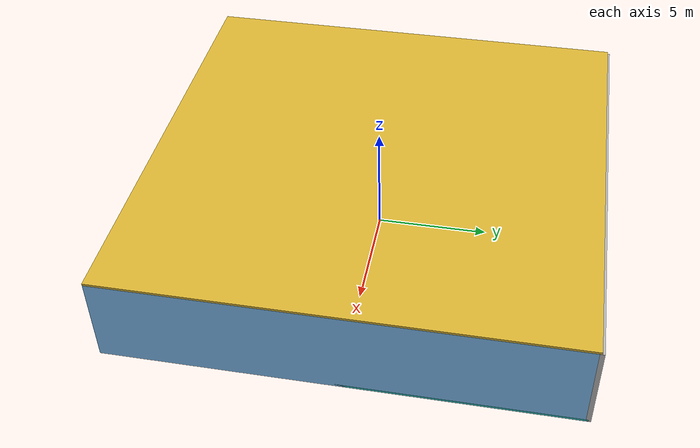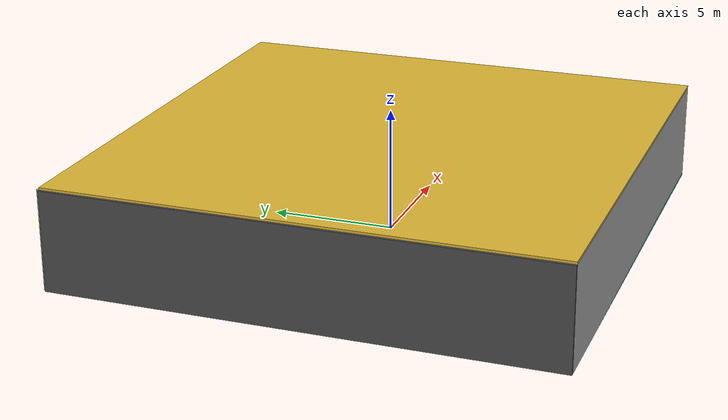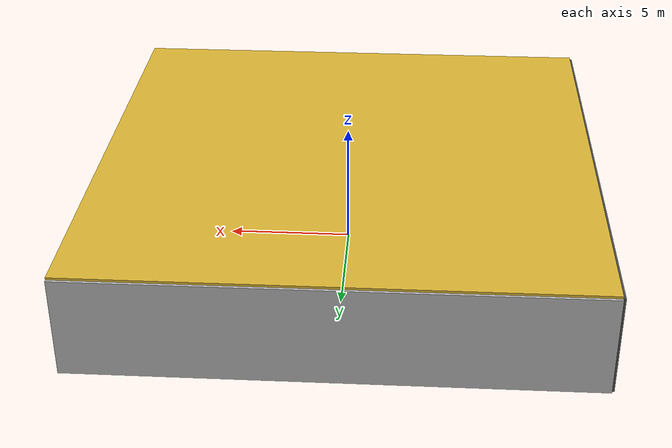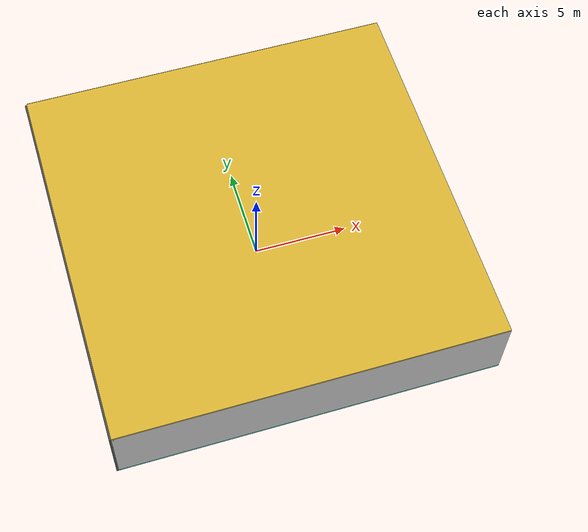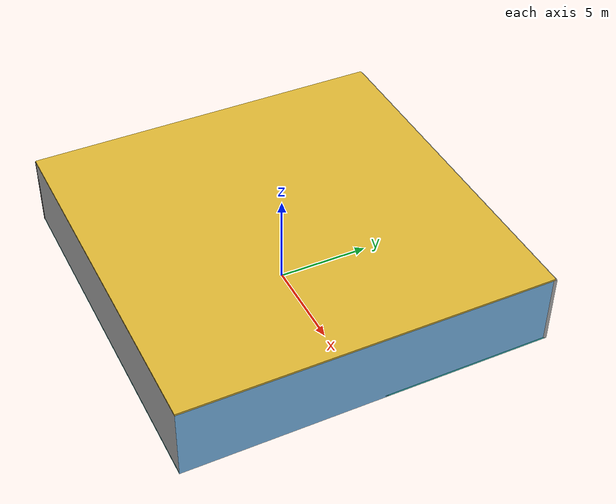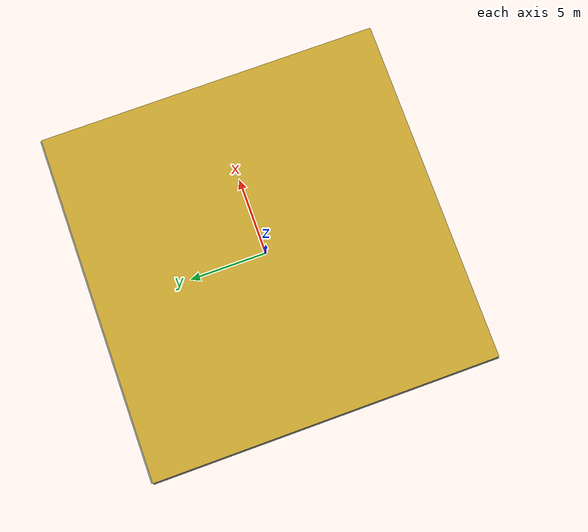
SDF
<sdf version="1.4">
 <world name="default">
  <physics type="ode">
   <max_step_size>0.001</max_step_size>
   <real_time_factor>1</real_time_factor>
   <real_time_update_rate>1000</real_time_update_rate>
   <gravity>0 0 -9.8</gravity>
  </physics>
  <scene><ambient>0.4 0.4 0.4 1</ambient><background>0.7 0.7 0.7 1</background><shadows>1</shadows></scene>
  <model name="Surrounding">
   <static>1</static>
   <link name="Ceiling">
    <collision name="Ceiling_Collision"><geometry><box><size>20 20 0.1</size></box></geometry></collision>
    <visual name="Ceiling_Visual">
     <geometry><box><size>20 20 0.1</size></box></geometry>
     <material>
      <script><uri>file://media/materials/scripts/gazebo.material</uri><name>Gazebo/Gold</name></script>
     </material>
    </visual>
    <pose>0 0 4.05 0 0 0</pose>
   </link>
   <link name="Wall_South">
    <collision name="Wall_South_Collision">
     <geometry><box><size>20 0 4</size></box></geometry>
     <pose>0 0 2 0 -0 0</pose>
    </collision>
    <visual name="Wall_South_Visual">
     <pose>0 0 2 0 -0 0</pose>
     <geometry><box><size>20 0 4</size></box></geometry>
     <material>
      <script><uri>file://media/materials/scripts/gazebo.material</uri><name>Gazebo/PioneerBody</name></script>
     </material>
    </visual>
    <velocity_decay><linear>0</linear><angular>0</angular></velocity_decay>
    <pose>0 -10 0 0 -0 0</pose>
   </link>
   <link name="Wall_East">
    <collision name="Wall_21_Collision">
     <geometry><box><size>20 0 4</size></box></geometry>
     <pose>0 0 2 0 -0 0</pose>
    </collision>
    <visual name="Wall_21_Visual">
     <pose>0 0 2 0 -0 0</pose>
     <geometry><box><size>20 0 4</size></box></geometry>
     <material>
      <script><uri>file://media/materials/scripts/gazebo.material</uri><name>Gazebo/SkyBlue</name></script>
     </material>
    </visual>
    <velocity_decay><linear>0</linear><angular>0</angular></velocity_decay>
    <pose>10 0 0 0 -0 1.5708</pose>
   </link>
   <link name="Wall_North">
    <collision name="Wall_22_Collision">
     <geometry><box><size>20 0.2 4</size></box></geometry>
     <pose>0 0 2 0 -0 0</pose>
    </collision>
    <visual name="Wall_22_Visual">
     <pose>0 0 2 0 -0 0</pose>
     <geometry><box><size>20 0.2 4</size></box></geometry>
     <material>
      <script><uri>file://media/materials/scripts/gazebo.material</uri><name>Gazebo/LightOn</name></script>
     </material>
    </visual>
    <velocity_decay><linear>0</linear><angular>0</angular></velocity_decay>
    <pose>0 10 0 0 -0 0</pose>
   </link>
   <link name="Wall_West">
    <collision name="Wall_23_Collision">
     <geometry><box><size>20 0.2 4</size></box></geometry>
     <pose>0 0 2 0 -0 0</pose>
    </collision>
    <visual name="Wall_23_Visual">
     <pose>0 0 2 0 -0 0</pose>
     <geometry><box><size>20 0.2 4</size></box></geometry>
     <material>
      <script><uri>file://media/materials/scripts/gazebo.material</uri><name>Gazebo/Road</name></script>
     </material>
    </visual>
    <velocity_decay><linear>0</linear><angular>0</angular></velocity_decay>
    <pose>-10 0 0 0 0 -1.5708</pose>
   </link>
   <link name="Ground_link">
    <collision name="collision">
     <pose>0 0 .05 0 -0 0</pose>
     <geometry><box><size>20 20 0.1</size></box></geometry>
    </collision>
    <visual name="visual">
     <pose>0 0 .05 0 -0 0</pose>
     <geometry><box><size>20 20 0.1</size></box></geometry>
     <material>
      <script><uri>file://media/materials/scripts/gazebo.material</uri><name>Gazebo/TurquoiseGlow</name></script>
     </material>
    </visual>
   </link>
   <static>1</static>
  </model>
  <spherical_coordinates>
   <surface_model>EARTH_WGS84</surface_model>
   <latitude_deg>0</latitude_deg>
   <longitude_deg>0</longitude_deg>
   <elevation>0</elevation>
   <heading_deg>0</heading_deg>
  </spherical_coordinates>
  <light name="lightball_0" type="diffuse">
   <diffuse>0.8 0.8 0.8 1</diffuse>
   <specular>0.2 0.2 0.2 1</specular>
   <attenuation>
    <range>100</range>
    <constant>0.7</constant>
    <linear>0.01</linear>
    <quadratic>0.001</quadratic>
   </attenuation>
   <direction>-0.5 0.1 -0.9</direction>
   <pose>-6.42058155522 9.58761531035 2.44152400105 0 0 0</pose>
  </light>
  <light name="lightball_1" type="diffuse">
   <diffuse>0.8 0.8 0.8 1</diffuse>
   <specular>0.2 0.2 0.2 1</specular>
   <attenuation>
    <range>100</range>
    <constant>0.7</constant>
    <linear>0.01</linear>
    <quadratic>0.001</quadratic>
   </attenuation>
   <direction>-0.5 0.1 -0.9</direction>
   <pose>4.3415338859 -3.76821008695 3.38419613191 0 0 0</pose>
  </light>
  <light name="lightball_2" type="diffuse">
   <diffuse>0.8 0.8 0.8 1</diffuse>
   <specular>0.2 0.2 0.2 1</specular>
   <attenuation>
    <range>100</range>
    <constant>0.7</constant>
    <linear>0.01</linear>
    <quadratic>0.001</quadratic>
   </attenuation>
   <direction>-0.5 0.1 -0.9</direction>
   <pose>-6.75649119212 1.27445340117 3.20631170544 0 0 0</pose>
  </light>
  <light name="lightball_3" type="diffuse">
   <diffuse>0.8 0.8 0.8 1</diffuse>
   <specular>0.2 0.2 0.2 1</specular>
   <attenuation>
    <range>100</range>
    <constant>0.7</constant>
    <linear>0.01</linear>
    <quadratic>0.001</quadratic>
   </attenuation>
   <direction>-0.5 0.1 -0.9</direction>
   <pose>-9.08137735236 -0.949149980616 3.16725021889 0 0 0</pose>
  </light>
  <light name="lightball_4" type="diffuse">
   <diffuse>0.8 0.8 0.8 1</diffuse>
   <specular>0.2 0.2 0.2 1</specular>
   <attenuation>
    <range>100</range>
    <constant>0.7</constant>
    <linear>0.01</linear>
    <quadratic>0.001</quadratic>
   </attenuation>
   <direction>-0.5 0.1 -0.9</direction>
   <pose>-7.3225241944 2.2212904642 1.9667410592 0 0 0</pose>
  </light>
  <light name="lightball_5" type="diffuse">
   <diffuse>0.8 0.8 0.8 1</diffuse>
   <specular>0.2 0.2 0.2 1</specular>
   <attenuation>
    <range>100</range>
    <constant>0.7</constant>
    <linear>0.01</linear>
    <quadratic>0.001</quadratic>
   </attenuation>
   <direction>-0.5 0.1 -0.9</direction>
   <pose>4.96342312295 3.62349384648 0.565728515565 0 0 0</pose>
  </light>
  <light name="lightball_6" type="diffuse">
   <diffuse>0.8 0.8 0.8 1</diffuse>
   <specular>0.2 0.2 0.2 1</specular>
   <attenuation>
    <range>100</range>
    <constant>0.7</constant>
    <linear>0.01</linear>
    <quadratic>0.001</quadratic>
   </attenuation>
   <direction>-0.5 0.1 -0.9</direction>
   <pose>5.92524127531 -6.06995127126 3.28461634386 0 0 0</pose>
  </light>
  <light name="lightball_7" type="diffuse">
   <diffuse>0.8 0.8 0.8 1</diffuse>
   <specular>0.2 0.2 0.2 1</specular>
   <attenuation>
    <range>100</range>
    <constant>0.7</constant>
    <linear>0.01</linear>
    <quadratic>0.001</quadratic>
   </attenuation>
   <direction>-0.5 0.1 -0.9</direction>
   <pose>-7.35966207426 -1.45814725708 1.85943138122 0 0 0</pose>
  </light>
  <light name="lightball_8" type="diffuse">
   <diffuse>0.8 0.8 0.8 1</diffuse>
   <specular>0.2 0.2 0.2 1</specular>
   <attenuation>
    <range>100</range>
    <constant>0.7</constant>
    <linear>0.01</linear>
    <quadratic>0.001</quadratic>
   </attenuation>
   <direction>-0.5 0.1 -0.9</direction>
   <pose>-8.40965545542 4.12103691992 3.63340755511 0 0 0</pose>
  </light>
  <light name="lightball_9" type="diffuse">
   <diffuse>0.8 0.8 0.8 1</diffuse>
   <specular>0.2 0.2 0.2 1</specular>
   <attenuation>
    <range>100</range>
    <constant>0.7</constant>
    <linear>0.01</linear>
    <quadratic>0.001</quadratic>
   </attenuation>
   <direction>-0.5 0.1 -0.9</direction>
   <pose>-2.59889722375 -5.13979102404 1.08741852443 0 0 0</pose>
  </light>
  <light name="lightball_10" type="diffuse">
   <diffuse>0.8 0.8 0.8 1</diffuse>
   <specular>0.2 0.2 0.2 1</specular>
   <attenuation>
    <range>100</range>
    <constant>0.7</constant>
    <linear>0.01</linear>
    <quadratic>0.001</quadratic>
   </attenuation>
   <direction>-0.5 0.1 -0.9</direction>
   <pose>-4.53310553967 9.03155311559 1.52901993619 0 0 0</pose>
  </light>
  <light name="lightball_11" type="diffuse">
   <diffuse>0.8 0.8 0.8 1</diffuse>
   <specular>0.2 0.2 0.2 1</specular>
   <attenuation>
    <range>100</range>
    <constant>0.7</constant>
    <linear>0.01</linear>
    <quadratic>0.001</quadratic>
   </attenuation>
   <direction>-0.5 0.1 -0.9</direction>
   <pose>3.30405407801 6.56840860482 3.48875404358 0 0 0</pose>
  </light>
  <light name="lightball_12" type="diffuse">
   <diffuse>0.8 0.8 0.8 1</diffuse>
   <specular>0.2 0.2 0.2 1</specular>
   <attenuation>
    <range>100</range>
    <constant>0.7</constant>
    <linear>0.01</linear>
    <quadratic>0.001</quadratic>
   </attenuation>
   <direction>-0.5 0.1 -0.9</direction>
   <pose>2.71129533845 -9.53469661548 1.73808618683 0 0 0</pose>
  </light>
  <light name="lightball_13" type="diffuse">
   <diffuse>0.8 0.8 0.8 1</diffuse>
   <specular>0.2 0.2 0.2 1</specular>
   <attenuation>
    <range>100</range>
    <constant>0.7</constant>
    <linear>0.01</linear>
    <quadratic>0.001</quadratic>
   </attenuation>
   <direction>-0.5 0.1 -0.9</direction>
   <pose>9.59385267769 -9.57235466903 2.96550702249 0 0 0</pose>
  </light>
  <include><uri>model://cabinet</uri><pose>-7.76612633064 4.44718495264 0 0 0 1.66838630968</pose></include>
  <include>
   <uri>model://robocup_3Dsim_goal</uri>
   <pose>-8.28345083633 6.94102600102 0 0 0 2.13456200657</pose>
  </include>
  <include>
   <uri>model://textured_shapes</uri>
   <pose>-4.40764249468 -3.96044018466 0 0 0 2.60696728148</pose>
  </include>
  <include>
   <uri>model://construction_cone</uri>
   <pose>0.842944902073 -7.1166201305 0 0 0 1.87738504317</pose>
  </include>
  <include><uri>model://table</uri><pose>0.96723798974 4.73814174196 0 0 0 0.0831321266356</pose></include>
 </world>
</sdf>

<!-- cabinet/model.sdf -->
<sdf version="1.5">
  <model name="cabinet">
    <static>true</static>
    <link name="cabinet_bottom_plate">
      <inertial>
        <pose>0 0 -1 0 0 0</pose>
        <inertia>
          <ixx>2.050000</ixx>
          <ixy>0</ixy>
          <ixz>0</ixz>
          <iyy>2.050000</iyy>
          <iyz>0</iyz>
          <izz>2.050000</izz>
        </inertia>
        <mass>25.000000</mass>
      </inertial>
      <collision name="cabinet_bottom_plate_geom">
        <pose>0 0 0.010000 0 0 0</pose>
        <geometry>
          <box>
            <size>0.450000 0.450000 0.020000</size>
          </box>
        </geometry>
      </collision>
      <visual name="cabinet_bottom_plate_geom_visual">
        <pose>0 0 0.010000 0 0 0</pose>
        <geometry>
          <box>
            <size>0.450000 0.450000 0.020000</size>
          </box>
        </geometry>
        <material>
          <script>
            <uri>model://media/materials/scripts/gazebo.material</uri>
            <name>Gazebo/Wood</name>
          </script>
        </material>
      </visual>
      <collision name="cabinet_bottom_plate_geom_cabinet_back_plate">
        <pose>0.235000 0 0.510000 0 0 0</pose>
        <geometry>
          <box>
            <size>0.020000 0.450000 1.020000</size>
          </box>
        </geometry>
      </collision>
      <visual name="cabinet_bottom_plate_geom_cabinet_back_plate_visual">
        <pose>0.235000 0 0.510000 0 0 0</pose>
        <geometry>
          <box>
            <size>0.020000 0.450000 1.020000</size>
          </box>
        </geometry>
        <material>
          <script>
            <uri>model://media/materials/scripts/gazebo.material</uri>
            <name>Gazebo/Wood</name>
          </script>
        </material>
      </visual>
      <collision name="cabinet_bottom_plate_geom_cabinet_left_plate">
        <pose>0 0.235000 0.510000 0 0 0</pose>
        <geometry>
          <box>
            <size>0.450000 0.020000 1.020000</size>
          </box>
        </geometry>
      </collision>
      <visual name="cabinet_bottom_plate_geom_cabinet_left_plate_visual">
        <pose>0 0.235000 0.510000 0 0 0</pose>
        <geometry>
          <box>
            <size>0.450000 0.020000 1.020000</size>
          </box>
        </geometry>
        <material>
          <script>
            <uri>model://media/materials/scripts/gazebo.material</uri>
            <name>Gazebo/Wood</name>
          </script>
        </material>
      </visual>
      <collision name="cabinet_bottom_plate_geom_cabinet_middle_plate">
        <pose>0 0 0.510000 0 0 0</pose>
        <geometry>
          <box>
            <size>0.450000 0.450000 0.020000</size>
          </box>
        </geometry>
      </collision>
      <visual name="cabinet_bottom_plate_geom_cabinet_middle_plate_visual">
        <pose>0 0 0.510000 0 0 0</pose>
        <geometry>
          <box>
            <size>0.450000 0.450000 0.020000</size>
          </box>
        </geometry>
        <material>
          <script>
            <uri>model://media/materials/scripts/gazebo.material</uri>
            <name>Gazebo/Wood</name>
          </script>
        </material>
      </visual>
      <collision name="cabinet_bottom_plate_geom_cabinet_right_plate">
        <pose>0 -0.235000 0.510000 0 0 0</pose>
        <geometry>
          <box>
            <size>0.450000 0.020000 1.020000</size>
          </box>
        </geometry>
      </collision>
      <visual name="cabinet_bottom_plate_geom_cabinet_right_plate_visual">
        <pose>0 -0.235000 0.510000 0 0 0</pose>
        <geometry>
          <box>
            <size>0.450000 0.020000 1.020000</size>
          </box>
        </geometry>
        <material>
          <script>
            <uri>model://media/materials/scripts/gazebo.material</uri>
            <name>Gazebo/Wood</name>
          </script>
        </material>
      </visual>
      <collision name="cabinet_bottom_plate_geom_cabinet_top_plate">
        <pose>0 0 1.010000 0 0 0</pose>
        <geometry>
          <box>
            <size>0.450000 0.450000 0.020000</size>
          </box>
        </geometry>
      </collision>
      <visual name="cabinet_bottom_plate_geom_cabinet_top_plate_visual">
        <pose>0 0 1.010000 0 0 0</pose>
        <geometry>
          <box>
            <size>0.450000 0.450000 0.020000</size>
          </box>
        </geometry>
        <material>
          <script>
            <uri>model://media/materials/scripts/gazebo.material</uri>
            <name>Gazebo/Wood</name>
          </script>
        </material>
      </visual>
    </link>
  </model>
</sdf>

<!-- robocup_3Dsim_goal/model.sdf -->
<sdf version="1.5">
  <model name="robocup_3d_goal">
    <static>true</static>
    <link name="left_post">
      <pose>0 1.05 0.45 0 0 0</pose>
      <collision name="collision">
        <geometry>
          <cylinder>
            <radius>0.05</radius>
            <length>0.9</length>
          </cylinder>
        </geometry>
      </collision>
      <visual name="visual">
        <geometry>
          <cylinder>
            <radius>0.05</radius>
            <length>0.9</length>
          </cylinder>
        </geometry>
        <material>
          <script>
            <uri>file://media/materials/scripts/gazebo.material</uri>
            <name>Gazebo/ZincYellow</name>
          </script>
        </material>
      </visual>
    </link>
    <link name="left_support_horiz_lower">
      <pose>0.30 1.05 0.01 0 0 0</pose>
      <collision name="collision">
        <geometry>
          <box>
            <size>0.50 0.02 0.02</size>
          </box>
        </geometry>
      </collision>
      <visual name="visual">
        <geometry>
          <box>
            <size>0.50 0.02 0.02</size>
          </box>
        </geometry>
        <material>
          <script>
            <uri>file://media/materials/scripts/gazebo.material</uri>
            <name>Gazebo/White</name>
          </script>
        </material>
      </visual>
    </link>
    <link name="left_support_horiz_upper">
      <pose>0.30 1.05 0.79 0 0 0</pose>
      <collision name="collision">
        <geometry>
          <box>
            <size>0.50 0.02 0.02</size>
          </box>
        </geometry>
      </collision>
      <visual name="visual">
        <geometry>
          <box>
            <size>0.50 0.02 0.02</size>
          </box>
        </geometry>
        <material>
          <script>
            <uri>file://media/materials/scripts/gazebo.material</uri>
            <name>Gazebo/White</name>
          </script>
        </material>
      </visual>
    </link>
    <link name="left_support_vertical">
      <pose>0.56 1.05 0.4 0 1.5708 0</pose>
      <collision name="collision">
        <geometry>
          <box>
            <size>0.80 0.02 0.02</size>
          </box>
        </geometry>
      </collision>
      <visual name="visual">
        <geometry>
          <box>
            <size>0.80 0.02 0.02</size>
          </box>
        </geometry>
        <material>
          <script>
            <uri>file://media/materials/scripts/gazebo.material</uri>
            <name>Gazebo/White</name>
          </script>
        </material>
      </visual>
    </link>
    <link name="right_support_horiz_lower">
      <pose>0.30 -1.05 0.01 0 0 0</pose>
      <collision name="collision">
        <geometry>
          <box>
            <size>0.50 0.02 0.02</size>
          </box>
        </geometry>
      </collision>
      <visual name="visual">
        <geometry>
          <box>
            <size>0.50 0.02 0.02</size>
          </box>
        </geometry>
        <material>
          <script>
            <uri>file://media/materials/scripts/gazebo.material</uri>
            <name>Gazebo/White</name>
          </script>
        </material>
      </visual>
    </link>
    <link name="right_support_horiz_upper">
      <pose>0.30 -1.05 0.79 0 0 0</pose>
      <collision name="collision">
        <geometry>
          <box>
            <size>0.50 0.02 0.02</size>
          </box>
        </geometry>
      </collision>
      <visual name="visual">
        <geometry>
          <box>
            <size>0.50 0.02 0.02</size>
          </box>
        </geometry>
        <material>
          <script>
            <uri>file://media/materials/scripts/gazebo.material</uri>
            <name>Gazebo/White</name>
          </script>
        </material>
      </visual>
    </link>
    <link name="right_support_vertical">
      <pose>0.56 -1.05 0.4 0 1.5708 0</pose>
      <collision name="collision">
        <geometry>
          <box>
            <size>0.80 0.02 0.02</size>
          </box>
        </geometry>
      </collision>
      <visual name="visual">
        <geometry>
          <box>
            <size>0.80 0.02 0.02</size>
          </box>
        </geometry>
        <material>
          <script>
            <uri>file://media/materials/scripts/gazebo.material</uri>
            <name>Gazebo/White</name>
          </script>
        </material>
      </visual>
    </link>
    <link name="center_support_horiz_lower">
      <pose>0.56 0 0.01 0 1.5708 0</pose>
      <collision name="collision">
        <geometry>
          <box>
            <size>0.02 2.08 0.02</size>
          </box>
        </geometry>
      </collision>
      <visual name="visual">
        <geometry>
          <box>
            <size>0.02 2.08 0.02</size>
          </box>
        </geometry>
        <material>
          <script>
            <uri>file://media/materials/scripts/gazebo.material</uri>
            <name>Gazebo/White</name>
          </script>
        </material>
      </visual>
    </link>
    <link name="center_support_horiz_upper">
      <pose>0.56 0 0.79 0 1.5708 0</pose>
      <collision name="collision">
        <geometry>
          <box>
            <size>0.02 2.08 0.02</size>
          </box>
        </geometry>
      </collision>
      <visual name="visual">
        <geometry>
          <box>
            <size>0.02 2.08 0.02</size>
          </box>
        </geometry>
        <material>
          <script>
            <uri>file://media/materials/scripts/gazebo.material</uri>
            <name>Gazebo/White</name>
          </script>
        </material>
      </visual>
    </link>
    <link name="right_post">
      <pose>0 -1.05 0.45 0 0 0</pose>
      <collision name="collision">
        <geometry>
          <cylinder>
            <radius>0.05</radius>
            <length>0.9</length>
          </cylinder>
        </geometry>
      </collision>
      <visual name="visual">
        <geometry>
          <cylinder>
            <radius>0.05</radius>
            <length>0.9</length>
          </cylinder>
        </geometry>
        <material>
          <script>
            <uri>file://media/materials/scripts/gazebo.material</uri>
            <name>Gazebo/ZincYellow</name>
          </script>
        </material>
      </visual>
    </link>
    <link name="crossbar">
      <pose>0 0 0.85 1.57 1.57 0</pose>
      <collision name="collision">
        <geometry>
          <cylinder>
            <radius>0.05</radius>
            <length>2.0</length>
          </cylinder>
        </geometry>
      </collision>
      <visual name="visual">
        <geometry>
          <cylinder>
            <radius>0.05</radius>
            <length>2.0</length>
          </cylinder>
        </geometry>
        <material>
          <script>
            <uri>file://media/materials/scripts/gazebo.material</uri>
            <name>Gazebo/ZincYellow</name>
          </script>
        </material>
      </visual>
    </link>
    <link name="center_net">
      <pose>0.56 0 0.40 0 0 0</pose>
      <collision name="collision">
        <geometry>
          <box>
            <size>0.01 2.1 0.80</size>
          </box>
        </geometry>
      </collision>
      <visual name="visual">
        <geometry>
          <box>
            <size>0.01 2.1 0.80</size>
          </box>
        </geometry>
        <material>
          <script>
            <uri>model://../model_source/models/robocup09_spl_field/materials/scripts/</uri>
            <uri>model://../model_source/models/robocup09_spl_field/materials/textures/</uri>
            <name>RoboCup/Net</name>
          </script>
        </material>
      </visual>
    </link>
    <link name="left_net">
      <pose>0.30 1.05 0.40 0 0 0</pose>
      <collision name="collision">
        <geometry>
          <box>
            <size>0.50 0.01 0.76</size>
          </box>
        </geometry>
      </collision>
      <visual name="visual">
        <geometry>
          <box>
            <size>0.50 0.01 0.76</size>
          </box>
        </geometry>
        <material>
          <script>
            <uri>model://../model_source/models/robocup09_spl_field/materials/scripts/</uri>
            <uri>model://../model_source/models/robocup09_spl_field/materials/textures/</uri>
            <name>RoboCup/Net</name>
          </script>
        </material>
      </visual>
    </link>
    <link name="right_net">
      <pose>0.30 -1.05 0.40 0 0 0</pose>
      <collision name="collision">
        <geometry>
          <box>
            <size>0.50 0.01 0.76</size>
          </box>
        </geometry>
      </collision>
      <visual name="visual">
        <geometry>
          <box>
            <size>0.50 0.01 0.76</size>
          </box>
        </geometry>
        <material>
          <script>
            <uri>model://../model_source/models/robocup09_spl_field/materials/scripts/</uri>
            <uri>model://../model_source/models/robocup09_spl_field/materials/textures/</uri>
            <name>RoboCup/Net</name>
          </script>
        </material>
      </visual>
    </link>
  </model>
</sdf>

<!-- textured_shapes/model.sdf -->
<sdf version="1.6">
  <model name="textured_shapes">
    <pose>0 0 0.5 0 0 0</pose>
    <link name="box">
      <pose>0 -1.5 0 0 0 0</pose>
      <collision name="collision">
        <geometry>
          <box>
            <size>1 1 1</size>
          </box>
        </geometry>
      </collision>
      <visual name="visual">
        <geometry>
          <box>
            <size>1 1 1</size>
          </box>
        </geometry>
        <material>
          <script>
            <uri>model://../model_source/models/textured_shapes/materials/scripts</uri>
            <uri>model://../model_source/models/textured_shapes/materials/textures</uri>
            <name>TexturedShape/Squares</name>
          </script>
        </material>
      </visual>
    </link>
    <link name="sphere">
      <collision name="collision">
        <geometry>
          <sphere>
            <radius>0.5</radius>
          </sphere>
        </geometry>
      </collision>
      <visual name="visual">
        <geometry>
          <sphere>
            <radius>0.5</radius>
          </sphere>
        </geometry>
        <material>
          <script>
            <uri>model://../model_source/models/textured_shapes/materials/scripts</uri>
            <uri>model://../model_source/models/textured_shapes/materials/textures</uri>
            <name>TexturedShape/Squares</name>
          </script>
        </material>
      </visual>
    </link>
    <link name="cylinder">
      <pose>0 1.5 0 0 0 0</pose>
      <collision name="collision">
        <geometry>
          <cylinder>
            <radius>0.5</radius>
            <length>1</length>
          </cylinder>
        </geometry>
      </collision>
      <visual name="visual">
        <geometry>
          <cylinder>
            <radius>0.5</radius>
            <length>1</length>
          </cylinder>
        </geometry>
        <material>
          <script>
            <uri>model://../model_source/models/textured_shapes/materials/scripts</uri>
            <uri>model://../model_source/models/textured_shapes/materials/textures</uri>
            <name>TexturedShape/Squares</name>
          </script>
        </material>
      </visual>
    </link>
  </model>
</sdf>

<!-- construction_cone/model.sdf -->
<sdf version="1.5">
  <model name="Construction Cone">
    <link name="link">
      <collision name="collision">
        <geometry>
          <mesh>
            <scale>10 10 10</scale>
            <uri>file://isr-testbed/construction_cone/meshes/construction_cone.dae</uri>
          </mesh>
        </geometry>
      </collision>
      <visual name="visual">
        <geometry>
          <mesh>
            <scale>10 10 10</scale>
            <uri>file://isr-testbed/construction_cone/meshes/construction_cone.dae</uri>
          </mesh>
        </geometry>
      </visual>
    </link>
  </model>
</sdf>

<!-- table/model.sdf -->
<sdf version="1.5">
  <model name="table">
    <static>true</static>
    <link name="link">
      <collision name="surface">
        <pose>0 0 1.0 0 0 0</pose>
        <geometry>
          <box>
            <size>1.5 0.8 0.03</size>
          </box>
        </geometry>
        <surface>
          <friction>
            <ode>
              <mu>0.6</mu>
              <mu2>0.6</mu2>
            </ode>
          </friction>
        </surface>
      </collision>
      <visual name="visual1">
        <pose>0 0 1.0 0 0 0</pose>
        <geometry>
          <box>
            <size>1.5 0.8 0.03</size>
          </box>
        </geometry>
        <material>
          <script>
            <uri>model://media/materials/scripts/gazebo.material</uri>
            <name>Gazebo/Wood</name>
          </script>
        </material>
      </visual>
      <collision name="front_left_leg">
        <pose>0.68 0.38 0.5 0 0 0</pose>
        <geometry>
          <cylinder>
            <radius>0.02</radius>
            <length>1.0</length>
          </cylinder>
        </geometry>
      </collision>
      <visual name="front_left_leg">
        <pose>0.68 0.38 0.5 0 0 0</pose>
        <geometry>
          <cylinder>
            <radius>0.02</radius>
            <length>1.0</length>
          </cylinder>
        </geometry>
        <material>
          <script>
            <uri>model://media/materials/scripts/gazebo.material</uri>
            <name>Gazebo/Grey</name>
          </script>
        </material>
      </visual>
      <collision name="front_right_leg">
        <pose>0.68 -0.38 0.5 0 0 0</pose>
        <geometry>
          <cylinder>
            <radius>0.02</radius>
            <length>1.0</length>
          </cylinder>
        </geometry>
      </collision>
      <visual name="front_right_leg">
        <pose>0.68 -0.38 0.5 0 0 0</pose>
        <geometry>
          <cylinder>
            <radius>0.02</radius>
            <length>1.0</length>
          </cylinder>
        </geometry>
        <material>
          <script>
            <uri>model://media/materials/scripts/gazebo.material</uri>
            <name>Gazebo/Grey</name>
          </script>
        </material>
      </visual>
      <collision name="back_right_leg">
        <pose>-0.68 -0.38 0.5 0 0 0</pose>
        <geometry>
          <cylinder>
            <radius>0.02</radius>
            <length>1.0</length>
          </cylinder>
        </geometry>
      </collision>
      <visual name="back_right_leg">
        <pose>-0.68 -0.38 0.5 0 0 0</pose>
        <geometry>
          <cylinder>
            <radius>0.02</radius>
            <length>1.0</length>
          </cylinder>
        </geometry>
        <material>
          <script>
            <uri>model://media/materials/scripts/gazebo.material</uri>
            <name>Gazebo/Grey</name>
          </script>
        </material>
      </visual>
      <collision name="back_left_leg">
        <pose>-0.68 0.38 0.5 0 0 0</pose>
        <geometry>
          <cylinder>
            <radius>0.02</radius>
            <length>1.0</length>
          </cylinder>
        </geometry>
      </collision>
      <visual name="back_left_leg">
        <pose>-0.68 0.38 0.5 0 0 0</pose>
        <geometry>
          <cylinder>
            <radius>0.02</radius>
            <length>1.0</length>
          </cylinder>
        </geometry>
        <material>
          <script>
            <uri>model://media/materials/scripts/gazebo.material</uri>
            <name>Gazebo/Grey</name>
          </script>
        </material>
      </visual>
    </link>
  </model>
</sdf>
